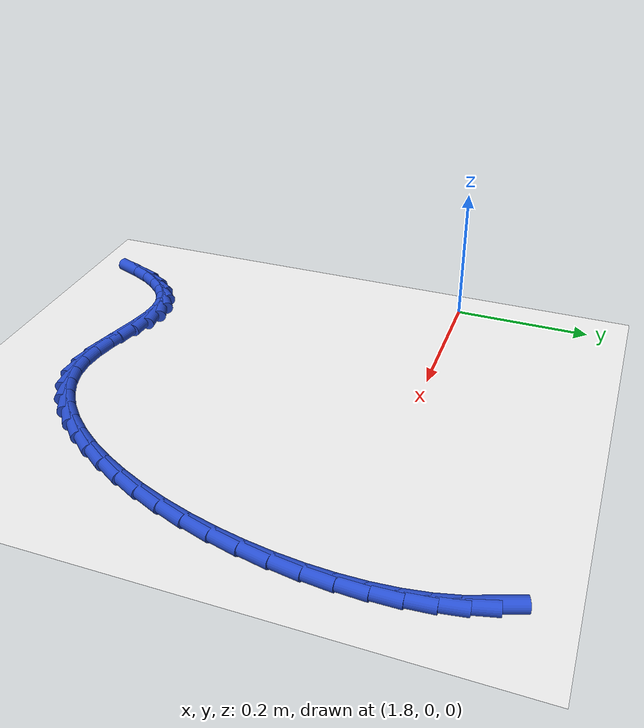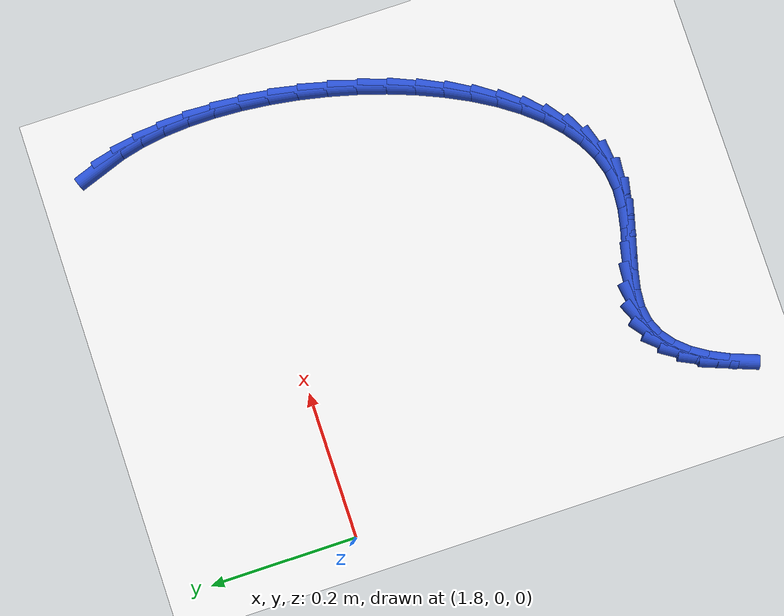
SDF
<sdf version="1.6">
 <world name="default">
  <model name="ground_plane">
   <static>1</static>
   <link name="link">
    <collision name="collision">
     <geometry><plane><normal>0 0 1</normal><size>100 100</size></plane></geometry>
     <surface><friction><ode><mu>100</mu><mu2>50</mu2></ode></friction></surface>
    </collision>
    <visual name="visual">
     <cast_shadows>0</cast_shadows>
     <geometry><plane><normal>0 0 1</normal><size>100 100</size></plane></geometry>
     <material>
      <script><uri>file://media/materials/scripts/gazebo.material</uri><name>Gazebo/WhiteGlow</name></script>
     </material>
    </visual>
   </link>
  </model>
  <model name="line">
   <link name="link_139">
    <pose>2.3734773142073213 0.16698523281030309 0.01 0 1.57 -1.2267229053199107</pose>
    <collision name="collision">
     <geometry><cylinder><radius>0.01</radius><length>0.08</length></cylinder></geometry>
    </collision>
    <visual name="visual">
     <material>
      <script><name>Gazebo/Blue</name><uri>file://media/materials/scripts/gazebo.material</uri></script>
     </material>
     <geometry><cylinder><radius>0.01</radius><length>0.08</length></cylinder></geometry>
    </visual>
   </link>
   <link name="link_140">
    <pose>2.383328776680296 0.13949226621583977 0.01 0 1.57 -1.3331280292912606</pose>
    <collision name="collision">
     <geometry><cylinder><radius>0.01</radius><length>0.08</length></cylinder></geometry>
    </collision>
    <visual name="visual">
     <material>
      <script><name>Gazebo/Blue</name><uri>file://media/materials/scripts/gazebo.material</uri></script>
     </material>
     <geometry><cylinder><radius>0.01</radius><length>0.08</length></cylinder></geometry>
    </visual>
   </link>
   <link name="link_141">
    <pose>2.3906831237085022 0.10913335953416375 0.01 0 1.57 -1.4216203578806736</pose>
    <collision name="collision">
     <geometry><cylinder><radius>0.01</radius><length>0.08</length></cylinder></geometry>
    </collision>
    <visual name="visual">
     <material>
      <script><name>Gazebo/Blue</name><uri>file://media/materials/scripts/gazebo.material</uri></script>
     </material>
     <geometry><cylinder><radius>0.01</radius><length>0.08</length></cylinder></geometry>
    </visual>
   </link>
   <link name="link_142">
    <pose>2.395615881072796 0.0763123047869901 0.01 0 1.57 -1.4967707954211693</pose>
    <collision name="collision">
     <geometry><cylinder><radius>0.01</radius><length>0.08</length></cylinder></geometry>
    </collision>
    <visual name="visual">
     <material>
      <script><name>Gazebo/Blue</name><uri>file://media/materials/scripts/gazebo.material</uri></script>
     </material>
     <geometry><cylinder><radius>0.01</radius><length>0.08</length></cylinder></geometry>
    </visual>
   </link>
   <link name="link_143">
    <pose>2.3982025745540314 0.04143289399603435 0.01 0 1.57 -1.5621428066396847</pose>
    <collision name="collision">
     <geometry><cylinder><radius>0.01</radius><length>0.08</length></cylinder></geometry>
    </collision>
    <visual name="visual">
     <material>
      <script><name>Gazebo/Blue</name><uri>file://media/materials/scripts/gazebo.material</uri></script>
     </material>
     <geometry><cylinder><radius>0.01</radius><length>0.08</length></cylinder></geometry>
    </visual>
   </link>
   <link name="link_144">
    <pose>2.398518729933063 0.004898919183012142 0.01 0 1.57 1.5211119742931223</pose>
    <collision name="collision">
     <geometry><cylinder><radius>0.01</radius><length>0.08</length></cylinder></geometry>
    </collision>
    <visual name="visual">
     <material>
      <script><name>Gazebo/Blue</name><uri>file://media/materials/scripts/gazebo.material</uri></script>
     </material>
     <geometry><cylinder><radius>0.01</radius><length>0.08</length></cylinder></geometry>
    </visual>
   </link>
   <link name="link_145">
    <pose>2.3966398729907445 -0.03288582763036107 0.01 0 1.57 1.467664572667725</pose>
    <collision name="collision">
     <geometry><cylinder><radius>0.01</radius><length>0.08</length></cylinder></geometry>
    </collision>
    <visual name="visual">
     <material>
      <script><name>Gazebo/Blue</name><uri>file://media/materials/scripts/gazebo.material</uri></script>
     </material>
     <geometry><cylinder><radius>0.01</radius><length>0.08</length></cylinder></geometry>
    </visual>
   </link>
   <link name="link_146">
    <pose>2.392641529507931 -0.07151755442237095 0.01 0 1.57 1.4173776126960733</pose>
    <collision name="collision">
     <geometry><cylinder><radius>0.01</radius><length>0.08</length></cylinder></geometry>
    </collision>
    <visual name="visual">
     <material>
      <script><name>Gazebo/Blue</name><uri>file://media/materials/scripts/gazebo.material</uri></script>
     </material>
     <geometry><cylinder><radius>0.01</radius><length>0.08</length></cylinder></geometry>
    </visual>
   </link>
   <link name="link_147">
    <pose>2.3865992252654777 -0.11059246917129964 0.01 0 1.57 1.3687865210645878</pose>
    <collision name="collision">
     <geometry><cylinder><radius>0.01</radius><length>0.08</length></cylinder></geometry>
    </collision>
    <visual name="visual">
     <material>
      <script><name>Gazebo/Blue</name><uri>file://media/materials/scripts/gazebo.material</uri></script>
     </material>
     <geometry><cylinder><radius>0.01</radius><length>0.08</length></cylinder></geometry>
    </visual>
   </link>
   <link name="link_148">
    <pose>2.378588486044239 -0.14970677985543263 0.01 0 1.57 1.3205741596341523</pose>
    <collision name="collision">
     <geometry><cylinder><radius>0.01</radius><length>0.08</length></cylinder></geometry>
    </collision>
    <visual name="visual">
     <material>
      <script><name>Gazebo/Blue</name><uri>file://media/materials/scripts/gazebo.material</uri></script>
     </material>
     <geometry><cylinder><radius>0.01</radius><length>0.08</length></cylinder></geometry>
    </visual>
   </link>
   <link name="link_149">
    <pose>2.3686848376250675 -0.18845669445305446 0.01 0 1.57 1.271471517758471</pose>
    <collision name="collision">
     <geometry><cylinder><radius>0.01</radius><length>0.08</length></cylinder></geometry>
    </collision>
    <visual name="visual">
     <material>
      <script><name>Gazebo/Blue</name><uri>file://media/materials/scripts/gazebo.material</uri></script>
     </material>
     <geometry><cylinder><radius>0.01</radius><length>0.08</length></cylinder></geometry>
    </visual>
   </link>
   <link name="link_150">
    <pose>2.3569638057888196 -0.22643842094244956 0.01 0 1.57 1.2201663990076315</pose>
    <collision name="collision">
     <geometry><cylinder><radius>0.01</radius><length>0.08</length></cylinder></geometry>
    </collision>
    <visual name="visual">
     <material>
      <script><name>Gazebo/Blue</name><uri>file://media/materials/scripts/gazebo.material</uri></script>
     </material>
     <geometry><cylinder><radius>0.01</radius><length>0.08</length></cylinder></geometry>
    </visual>
   </link>
   <link name="link_151">
    <pose>2.3435009163163496 -0.2632481673019025 0.01 0 1.57 1.1652106742191672</pose>
    <collision name="collision">
     <geometry><cylinder><radius>0.01</radius><length>0.08</length></cylinder></geometry>
    </collision>
    <visual name="visual">
     <material>
      <script><name>Gazebo/Blue</name><uri>file://media/materials/scripts/gazebo.material</uri></script>
     </material>
     <geometry><cylinder><radius>0.01</radius><length>0.08</length></cylinder></geometry>
    </visual>
   </link>
   <link name="link_152">
    <pose>2.328371694988511 -0.29848214150969754 0.01 0 1.57 1.104918187538728</pose>
    <collision name="collision">
     <geometry><cylinder><radius>0.01</radius><length>0.08</length></cylinder></geometry>
    </collision>
    <visual name="visual">
     <material>
      <script><name>Gazebo/Blue</name><uri>file://media/materials/scripts/gazebo.material</uri></script>
     </material>
     <geometry><cylinder><radius>0.01</radius><length>0.08</length></cylinder></geometry>
    </visual>
   </link>
   <link name="link_153">
    <pose>2.3116516675861596 -0.33173655154411935 0.01 0 1.57 1.0372485008402021</pose>
    <collision name="collision">
     <geometry><cylinder><radius>0.01</radius><length>0.08</length></cylinder></geometry>
    </collision>
    <visual name="visual">
     <material>
      <script><name>Gazebo/Blue</name><uri>file://media/materials/scripts/gazebo.material</uri></script>
     </material>
     <geometry><cylinder><radius>0.01</radius><length>0.08</length></cylinder></geometry>
    </visual>
   </link>
   <link name="link_154">
    <pose>2.293416359890149 -0.3626076053834524 0.01 0 1.57 0.9596802606999483</pose>
    <collision name="collision">
     <geometry><cylinder><radius>0.01</radius><length>0.08</length></cylinder></geometry>
    </collision>
    <visual name="visual">
     <material>
      <script><name>Gazebo/Blue</name><uri>file://media/materials/scripts/gazebo.material</uri></script>
     </material>
     <geometry><cylinder><radius>0.01</radius><length>0.08</length></cylinder></geometry>
    </visual>
   </link>
   <link name="link_155">
    <pose>2.273741297681333 -0.39069151100598176 0.01 0 1.57 0.8691012224330819</pose>
    <collision name="collision">
     <geometry><cylinder><radius>0.01</radius><length>0.08</length></cylinder></geometry>
    </collision>
    <visual name="visual">
     <material>
      <script><name>Gazebo/Blue</name><uri>file://media/materials/scripts/gazebo.material</uri></script>
     </material>
     <geometry><cylinder><radius>0.01</radius><length>0.08</length></cylinder></geometry>
    </visual>
   </link>
   <link name="link_156">
    <pose>2.2527020067405683 -0.4155844763899902 0.01 0 1.57 0.7617983782136277</pose>
    <collision name="collision">
     <geometry><cylinder><radius>0.01</radius><length>0.08</length></cylinder></geometry>
    </collision>
    <visual name="visual">
     <material>
      <script><name>Gazebo/Blue</name><uri>file://media/materials/scripts/gazebo.material</uri></script>
     </material>
     <geometry><cylinder><radius>0.01</radius><length>0.08</length></cylinder></geometry>
    </visual>
   </link>
   <link name="link_157">
    <pose>2.230374012848708 -0.4368827095137633 0.01 0 1.57 0.6337476138356227</pose>
    <collision name="collision">
     <geometry><cylinder><radius>0.01</radius><length>0.08</length></cylinder></geometry>
    </collision>
    <visual name="visual">
     <material>
      <script><name>Gazebo/Blue</name><uri>file://media/materials/scripts/gazebo.material</uri></script>
     </material>
     <geometry><cylinder><radius>0.01</radius><length>0.08</length></cylinder></geometry>
    </visual>
   </link>
   <link name="link_158">
    <pose>2.206832841786607 -0.45418241835558537 0.01 0 1.57 0.48157134920301803</pose>
    <collision name="collision">
     <geometry><cylinder><radius>0.01</radius><length>0.08</length></cylinder></geometry>
    </collision>
    <visual name="visual">
     <material>
      <script><name>Gazebo/Blue</name><uri>file://media/materials/scripts/gazebo.material</uri></script>
     </material>
     <geometry><cylinder><radius>0.01</radius><length>0.08</length></cylinder></geometry>
    </visual>
   </link>
   <link name="link_159">
    <pose>2.182154019335119 -0.46707981089374095 0.01 0 1.57 0.3045558545214459</pose>
    <collision name="collision">
     <geometry><cylinder><radius>0.01</radius><length>0.08</length></cylinder></geometry>
    </collision>
    <visual name="visual">
     <material>
      <script><name>Gazebo/Blue</name><uri>file://media/materials/scripts/gazebo.material</uri></script>
     </material>
     <geometry><cylinder><radius>0.01</radius><length>0.08</length></cylinder></geometry>
    </visual>
   </link>
   <link name="link_160">
    <pose>2.1564130712750993 -0.47517109510651423 0.01 0 1.57 0.107469270475679</pose>
    <collision name="collision">
     <geometry><cylinder><radius>0.01</radius><length>0.08</length></cylinder></geometry>
    </collision>
    <visual name="visual">
     <material>
      <script><name>Gazebo/Blue</name><uri>file://media/materials/scripts/gazebo.material</uri></script>
     </material>
     <geometry><cylinder><radius>0.01</radius><length>0.08</length></cylinder></geometry>
    </visual>
   </link>
   <link name="link_161">
    <pose>2.1296859200107083 -0.47805455207895214 0.01 0 1.57 -0.07763760973145631</pose>
    <collision name="collision">
     <geometry><cylinder><radius>0.01</radius><length>0.08</length></cylinder></geometry>
    </collision>
    <visual name="visual">
     <material>
      <script><name>Gazebo/Blue</name><uri>file://media/materials/scripts/gazebo.material</uri></script>
     </material>
     <geometry><cylinder><radius>0.01</radius><length>0.08</length></cylinder></geometry>
    </visual>
   </link>
   <link name="link_162">
    <pose>2.102160364544179 -0.4759132296722843 0.01 0 1.57 -0.19823411185809478</pose>
    <collision name="collision">
     <geometry><cylinder><radius>0.01</radius><length>0.08</length></cylinder></geometry>
    </collision>
    <visual name="visual">
     <material>
      <script><name>Gazebo/Blue</name><uri>file://media/materials/scripts/gazebo.material</uri></script>
     </material>
     <geometry><cylinder><radius>0.01</radius><length>0.08</length></cylinder></geometry>
    </visual>
   </link>
   <link name="link_163">
    <pose>2.0742890815814476 -0.47031466261581034 0.01 0 1.57 -0.2570405214928624</pose>
    <collision name="collision">
     <geometry><cylinder><radius>0.01</radius><length>0.08</length></cylinder></geometry>
    </collision>
    <visual name="visual">
     <material>
      <script><name>Gazebo/Blue</name><uri>file://media/materials/scripts/gazebo.material</uri></script>
     </material>
     <geometry><cylinder><radius>0.01</radius><length>0.08</length></cylinder></geometry>
    </visual>
   </link>
   <link name="link_164">
    <pose>2.046563079525352 -0.46302674123786497 0.01 0 1.57 -0.2601012915540838</pose>
    <collision name="collision">
     <geometry><cylinder><radius>0.01</radius><length>0.08</length></cylinder></geometry>
    </collision>
    <visual name="visual">
     <material>
      <script><name>Gazebo/Blue</name><uri>file://media/materials/scripts/gazebo.material</uri></script>
     </material>
     <geometry><cylinder><radius>0.01</radius><length>0.08</length></cylinder></geometry>
    </visual>
   </link>
   <link name="link_165">
    <pose>2.0194733667787355 -0.45581735586678407 0.01 0 1.57 -0.20370122755537895</pose>
    <collision name="collision">
     <geometry><cylinder><radius>0.01</radius><length>0.08</length></cylinder></geometry>
    </collision>
    <visual name="visual">
     <material>
      <script><name>Gazebo/Blue</name><uri>file://media/materials/scripts/gazebo.material</uri></script>
     </material>
     <geometry><cylinder><radius>0.01</radius><length>0.08</length></cylinder></geometry>
    </visual>
   </link>
   <link name="link_166">
    <pose>1.9935109517444374 -0.4504543968309025 0.01 0 1.57 -0.07170704974004644</pose>
    <collision name="collision">
     <geometry><cylinder><radius>0.01</radius><length>0.08</length></cylinder></geometry>
    </collision>
    <visual name="visual">
     <material>
      <script><name>Gazebo/Blue</name><uri>file://media/materials/scripts/gazebo.material</uri></script>
     </material>
     <geometry><cylinder><radius>0.01</radius><length>0.08</length></cylinder></geometry>
    </visual>
   </link>
   <link name="link_167">
    <pose>1.9691668428252969 -0.4487057544585551 0.01 0 1.57 0.15487164526446262</pose>
    <collision name="collision">
     <geometry><cylinder><radius>0.01</radius><length>0.08</length></cylinder></geometry>
    </collision>
    <visual name="visual">
     <material>
      <script><name>Gazebo/Blue</name><uri>file://media/materials/scripts/gazebo.material</uri></script>
     </material>
     <geometry><cylinder><radius>0.01</radius><length>0.08</length></cylinder></geometry>
    </visual>
   </link>
   <link name="link_168">
    <pose>1.9468931301905172 -0.45218316771993244 0.01 0 1.57 0.41709740485020064</pose>
    <collision name="collision">
     <geometry><cylinder><radius>0.01</radius><length>0.08</length></cylinder></geometry>
    </collision>
    <visual name="visual">
     <material>
      <script><name>Gazebo/Blue</name><uri>file://media/materials/scripts/gazebo.material</uri></script>
     </material>
     <geometry><cylinder><radius>0.01</radius><length>0.08</length></cylinder></geometry>
    </visual>
   </link>
   <link name="link_169">
    <pose>1.9267909746675336 -0.46109034422807116 0.01 0 1.57 0.6534723850846179</pose>
    <collision name="collision">
     <geometry><cylinder><radius>0.01</radius><length>0.08</length></cylinder></geometry>
    </collision>
    <visual name="visual">
     <material>
      <script><name>Gazebo/Blue</name><uri>file://media/materials/scripts/gazebo.material</uri></script>
     </material>
     <geometry><cylinder><radius>0.01</radius><length>0.08</length></cylinder></geometry>
    </visual>
   </link>
   <link name="link_170">
    <pose>1.9087755421746693 -0.47488472551581173 0.01 0 1.57 0.8473133126540295</pose>
    <collision name="collision">
     <geometry><cylinder><radius>0.01</radius><length>0.08</length></cylinder></geometry>
    </collision>
    <visual name="visual">
     <material>
      <script><name>Gazebo/Blue</name><uri>file://media/materials/scripts/gazebo.material</uri></script>
     </material>
     <geometry><cylinder><radius>0.01</radius><length>0.08</length></cylinder></geometry>
    </visual>
   </link>
   <link name="link_171">
    <pose>1.8927602959595187 -0.49301692150207327 0.01 0 1.57 0.9991435697468306</pose>
    <collision name="collision">
     <geometry><cylinder><radius>0.01</radius><length>0.08</length></cylinder></geometry>
    </collision>
    <visual name="visual">
     <material>
      <script><name>Gazebo/Blue</name><uri>file://media/materials/scripts/gazebo.material</uri></script>
     </material>
     <geometry><cylinder><radius>0.01</radius><length>0.08</length></cylinder></geometry>
    </visual>
   </link>
   <link name="link_172">
    <pose>1.8786586992696759 -0.5149375421057752 0.01 0 1.57 1.11690476372053</pose>
    <collision name="collision">
     <geometry><cylinder><radius>0.01</radius><length>0.08</length></cylinder></geometry>
    </collision>
    <visual name="visual">
     <material>
      <script><name>Gazebo/Blue</name><uri>file://media/materials/scripts/gazebo.material</uri></script>
     </material>
     <geometry><cylinder><radius>0.01</radius><length>0.08</length></cylinder></geometry>
    </visual>
   </link>
   <link name="link_173">
    <pose>1.8663842153527346 -0.540097197245838 0.01 0 1.57 1.2091822073603427</pose>
    <collision name="collision">
     <geometry><cylinder><radius>0.01</radius><length>0.08</length></cylinder></geometry>
    </collision>
    <visual name="visual">
     <material>
      <script><name>Gazebo/Blue</name><uri>file://media/materials/scripts/gazebo.material</uri></script>
     </material>
     <geometry><cylinder><radius>0.01</radius><length>0.08</length></cylinder></geometry>
    </visual>
   </link>
  </model>
 </world>
</sdf>
